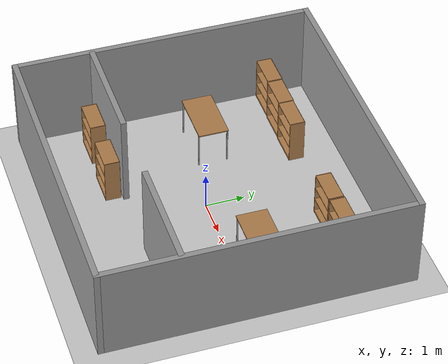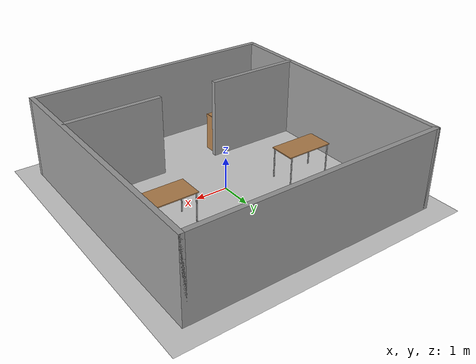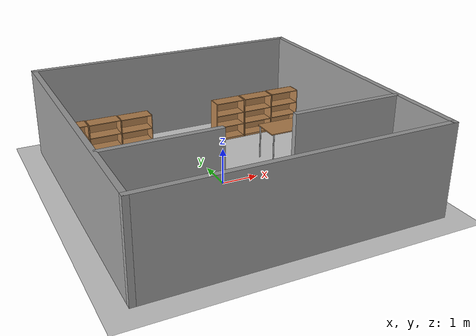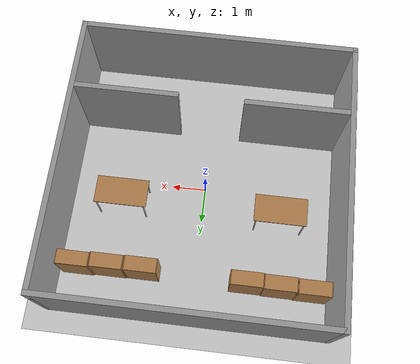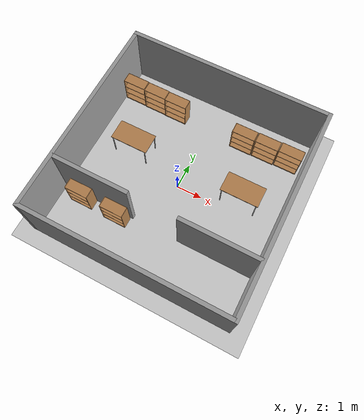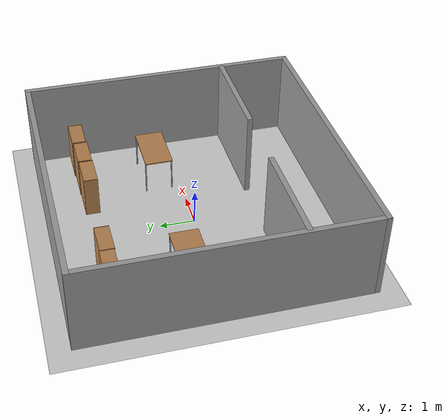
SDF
<sdf version="1.6">
 <world name="default">
  <light name="sun" type="directional">
   <pose>0 0 10 0 -0 0</pose>
   <diffuse>0.8 0.8 0.8 1</diffuse>
   <specular>0.2 0.2 0.2 1</specular>
   <attenuation>
    <range>1000</range>
    <constant>0.9</constant>
    <linear>0.01</linear>
    <quadratic>0.001</quadratic>
   </attenuation>
   <direction>-0.5 0.1 -0.9</direction>
  </light>
  <model name="ground_plane">
   <static>1</static>
   <link name="link">
    <collision name="collision">
     <geometry><plane><normal>0 0 1</normal><size>100 100</size></plane></geometry>
     <surface>
      <contact><collide_bitmask>65535</collide_bitmask></contact>
      <friction><ode><mu>100</mu><mu2>50</mu2></ode></friction>
     </surface>
    </collision>
    <visual name="visual">
     <cast_shadows>0</cast_shadows>
     <geometry><plane><normal>0 0 1</normal><size>100 100</size></plane></geometry>
     <material>
      <script><uri>file://media/materials/scripts/gazebo.material</uri><name>Gazebo/Grey</name></script>
     </material>
    </visual>
   </link>
  </model>
  <gravity>0 0 -9.8</gravity>
  <magnetic_field>6e-06 2.3e-05 -4.2e-05</magnetic_field>
  <atmosphere type="adiabatic"/>
  <physics name="default_physics" default="0" type="ode">
   <max_step_size>0.001</max_step_size>
   <real_time_factor>1</real_time_factor>
   <real_time_update_rate>1000</real_time_update_rate>
  </physics>
  <scene><ambient>0.4 0.4 0.4 1</ambient><background>0.7 0.7 0.7 1</background><shadows>1</shadows></scene>
  <spherical_coordinates>
   <surface_model>EARTH_WGS84</surface_model>
   <latitude_deg>0</latitude_deg>
   <longitude_deg>0</longitude_deg>
   <elevation>0</elevation>
   <heading_deg>0</heading_deg>
  </spherical_coordinates>
  <model name="simple_room">
   <pose>0.062678 0.074372 0 0 -0 0</pose>
   <link name="Wall_1">
    <collision name="Wall_1_Collision">
     <geometry><box><size>8 0.15 2.5</size></box></geometry>
     <pose>0 0 1.25 0 -0 0</pose>
    </collision>
    <visual name="Wall_1_Visual">
     <pose>0 0 1.25 0 -0 0</pose>
     <geometry><box><size>8 0.15 2.5</size></box></geometry>
     <material>
      <script><uri>file://media/materials/scripts/gazebo.material</uri><name>Gazebo/Grey</name></script>
      <ambient>1 1 1 1</ambient>
     </material>
     <meta><layer>0</layer></meta>
    </visual>
    <pose>-3.925 0 0 0 -0 1.5708</pose>
   </link>
   <link name="Wall_11">
    <collision name="Wall_11_Collision">
     <geometry><box><size>3 0.15 2.5</size></box></geometry>
     <pose>0 0 1.25 0 -0 0</pose>
    </collision>
    <visual name="Wall_11_Visual">
     <pose>0 0 1.25 0 -0 0</pose>
     <geometry><box><size>3 0.15 2.5</size></box></geometry>
     <material>
      <script><uri>file://media/materials/scripts/gazebo.material</uri><name>Gazebo/Grey</name></script>
      <ambient>1 1 1 1</ambient>
     </material>
     <meta><layer>0</layer></meta>
    </visual>
    <pose>2.41267 -1.91603 0 0 -0 3.14159</pose>
   </link>
   <link name="Wall_2">
    <collision name="Wall_2_Collision">
     <geometry><box><size>8 0.15 2.5</size></box></geometry>
     <pose>0 0 1.25 0 -0 0</pose>
    </collision>
    <visual name="Wall_2_Visual">
     <pose>0 0 1.25 0 -0 0</pose>
     <geometry><box><size>8 0.15 2.5</size></box></geometry>
     <material>
      <script><uri>file://media/materials/scripts/gazebo.material</uri><name>Gazebo/Grey</name></script>
      <ambient>1 1 1 1</ambient>
     </material>
     <meta><layer>0</layer></meta>
    </visual>
    <pose>-0 3.925 0 0 -0 0</pose>
   </link>
   <link name="Wall_3">
    <collision name="Wall_3_Collision">
     <geometry><box><size>8 0.15 2.5</size></box></geometry>
     <pose>0 0 1.25 0 -0 0</pose>
    </collision>
    <visual name="Wall_3_Visual">
     <pose>0 0 1.25 0 -0 0</pose>
     <geometry><box><size>8 0.15 2.5</size></box></geometry>
     <material>
      <script><uri>file://media/materials/scripts/gazebo.material</uri><name>Gazebo/Grey</name></script>
      <ambient>1 1 1 1</ambient>
     </material>
     <meta><layer>0</layer></meta>
    </visual>
    <pose>3.925 0 0 0 -0 -1.5708</pose>
   </link>
   <link name="Wall_4">
    <collision name="Wall_4_Collision">
     <geometry><box><size>8 0.15 2.5</size></box></geometry>
     <pose>0 0 1.25 0 -0 0</pose>
    </collision>
    <visual name="Wall_4_Visual">
     <pose>0 0 1.25 0 -0 0</pose>
     <geometry><box><size>8 0.15 2.5</size></box></geometry>
     <material>
      <script><uri>file://media/materials/scripts/gazebo.material</uri><name>Gazebo/Grey</name></script>
      <ambient>1 1 1 1</ambient>
     </material>
     <meta><layer>0</layer></meta>
    </visual>
    <pose>-0 -3.925 0 0 -0 3.14159</pose>
   </link>
   <link name="Wall_9">
    <collision name="Wall_9_Collision">
     <geometry><box><size>3 0.15 2.5</size></box></geometry>
     <pose>0 0 1.25 0 -0 0</pose>
    </collision>
    <visual name="Wall_9_Visual">
     <pose>0 0 1.25 0 -0 0</pose>
     <geometry><box><size>3 0.15 2.5</size></box></geometry>
     <material>
      <script><uri>file://media/materials/scripts/gazebo.material</uri><name>Gazebo/Grey</name></script>
      <ambient>1 1 1 1</ambient>
     </material>
     <meta><layer>0</layer></meta>
    </visual>
    <pose>-2.42072 -1.91603 0 0 -0 0</pose>
   </link>
   <static>1</static>
  </model>
  <model name="bookshelf">
   <static>1</static>
   <link name="link">
    <inertial><mass>1</mass></inertial>
    <collision name="back">
     <pose>0 0.005 0.6 0 -0 0</pose>
     <geometry><box><size>0.9 0.01 1.2</size></box></geometry>
    </collision>
    <visual name="visual1">
     <pose>0 0.005 0.6 0 -0 0</pose>
     <geometry><box><size>0.9 0.01 1.2</size></box></geometry>
     <material>
      <script><uri>file://media/materials/scripts/gazebo.material</uri><name>Gazebo/Wood</name></script>
     </material>
    </visual>
    <collision name="left_side">
     <pose>0.45 -0.195 0.6 0 -0 0</pose>
     <geometry><box><size>0.02 0.4 1.2</size></box></geometry>
    </collision>
    <visual name="visual2">
     <pose>0.45 -0.195 0.6 0 -0 0</pose>
     <geometry><box><size>0.02 0.4 1.2</size></box></geometry>
     <material>
      <script><uri>file://media/materials/scripts/gazebo.material</uri><name>Gazebo/Wood</name></script>
     </material>
    </visual>
    <collision name="right_side">
     <pose>-0.45 -0.195 0.6 0 -0 0</pose>
     <geometry><box><size>0.02 0.4 1.2</size></box></geometry>
    </collision>
    <visual name="visual3">
     <pose>-0.45 -0.195 0.6 0 -0 0</pose>
     <geometry><box><size>0.02 0.4 1.2</size></box></geometry>
     <material>
      <script><uri>file://media/materials/scripts/gazebo.material</uri><name>Gazebo/Wood</name></script>
     </material>
    </visual>
    <collision name="bottom">
     <pose>0 -0.195 0.03 0 -0 0</pose>
     <geometry><box><size>0.88 0.4 0.06</size></box></geometry>
    </collision>
    <visual name="visual4">
     <pose>0 -0.195 0.03 0 -0 0</pose>
     <geometry><box><size>0.88 0.4 0.06</size></box></geometry>
     <material>
      <script><uri>file://media/materials/scripts/gazebo.material</uri><name>Gazebo/Wood</name></script>
     </material>
    </visual>
    <collision name="top">
     <pose>0 -0.195 1.19 0 -0 0</pose>
     <geometry><box><size>0.88 0.4 0.02</size></box></geometry>
    </collision>
    <visual name="visual5">
     <pose>0 -0.195 1.19 0 -0 0</pose>
     <geometry><box><size>0.88 0.4 0.02</size></box></geometry>
     <material>
      <script><uri>file://media/materials/scripts/gazebo.material</uri><name>Gazebo/Wood</name></script>
     </material>
    </visual>
    <collision name="low_shelf">
     <pose>0 -0.195 0.43 0 -0 0</pose>
     <geometry><box><size>0.88 0.4 0.02</size></box></geometry>
    </collision>
    <visual name="visual6">
     <pose>0 -0.195 0.43 0 -0 0</pose>
     <geometry><box><size>0.88 0.4 0.02</size></box></geometry>
     <material>
      <script><uri>file://media/materials/scripts/gazebo.material</uri><name>Gazebo/Wood</name></script>
     </material>
    </visual>
    <collision name="high_shelf">
     <pose>0 -0.195 0.8 0 -0 0</pose>
     <geometry><box><size>0.88 0.4 0.02</size></box></geometry>
    </collision>
    <visual name="visual7">
     <pose>0 -0.195 0.8 0 -0 0</pose>
     <geometry><box><size>0.88 0.4 0.02</size></box></geometry>
     <material>
      <script><uri>file://media/materials/scripts/gazebo.material</uri><name>Gazebo/Wood</name></script>
     </material>
    </visual>
   </link>
   <pose>-1.4151 -1.96518 0 0 -0 0</pose>
  </model>
  <model name="bookshelf_0">
   <static>1</static>
   <link name="link">
    <inertial><mass>1</mass></inertial>
    <collision name="back">
     <pose>0 0.005 0.6 0 -0 0</pose>
     <geometry><box><size>0.9 0.01 1.2</size></box></geometry>
    </collision>
    <visual name="visual1">
     <pose>0 0.005 0.6 0 -0 0</pose>
     <geometry><box><size>0.9 0.01 1.2</size></box></geometry>
     <material>
      <script><uri>file://media/materials/scripts/gazebo.material</uri><name>Gazebo/Wood</name></script>
     </material>
    </visual>
    <collision name="left_side">
     <pose>0.45 -0.195 0.6 0 -0 0</pose>
     <geometry><box><size>0.02 0.4 1.2</size></box></geometry>
    </collision>
    <visual name="visual2">
     <pose>0.45 -0.195 0.6 0 -0 0</pose>
     <geometry><box><size>0.02 0.4 1.2</size></box></geometry>
     <material>
      <script><uri>file://media/materials/scripts/gazebo.material</uri><name>Gazebo/Wood</name></script>
     </material>
    </visual>
    <collision name="right_side">
     <pose>-0.45 -0.195 0.6 0 -0 0</pose>
     <geometry><box><size>0.02 0.4 1.2</size></box></geometry>
    </collision>
    <visual name="visual3">
     <pose>-0.45 -0.195 0.6 0 -0 0</pose>
     <geometry><box><size>0.02 0.4 1.2</size></box></geometry>
     <material>
      <script><uri>file://media/materials/scripts/gazebo.material</uri><name>Gazebo/Wood</name></script>
     </material>
    </visual>
    <collision name="bottom">
     <pose>0 -0.195 0.03 0 -0 0</pose>
     <geometry><box><size>0.88 0.4 0.06</size></box></geometry>
    </collision>
    <visual name="visual4">
     <pose>0 -0.195 0.03 0 -0 0</pose>
     <geometry><box><size>0.88 0.4 0.06</size></box></geometry>
     <material>
      <script><uri>file://media/materials/scripts/gazebo.material</uri><name>Gazebo/Wood</name></script>
     </material>
    </visual>
    <collision name="top">
     <pose>0 -0.195 1.19 0 -0 0</pose>
     <geometry><box><size>0.88 0.4 0.02</size></box></geometry>
    </collision>
    <visual name="visual5">
     <pose>0 -0.195 1.19 0 -0 0</pose>
     <geometry><box><size>0.88 0.4 0.02</size></box></geometry>
     <material>
      <script><uri>file://media/materials/scripts/gazebo.material</uri><name>Gazebo/Wood</name></script>
     </material>
    </visual>
    <collision name="low_shelf">
     <pose>0 -0.195 0.43 0 -0 0</pose>
     <geometry><box><size>0.88 0.4 0.02</size></box></geometry>
    </collision>
    <visual name="visual6">
     <pose>0 -0.195 0.43 0 -0 0</pose>
     <geometry><box><size>0.88 0.4 0.02</size></box></geometry>
     <material>
      <script><uri>file://media/materials/scripts/gazebo.material</uri><name>Gazebo/Wood</name></script>
     </material>
    </visual>
    <collision name="high_shelf">
     <pose>0 -0.195 0.8 0 -0 0</pose>
     <geometry><box><size>0.88 0.4 0.02</size></box></geometry>
    </collision>
    <visual name="visual7">
     <pose>0 -0.195 0.8 0 -0 0</pose>
     <geometry><box><size>0.88 0.4 0.02</size></box></geometry>
     <material>
      <script><uri>file://media/materials/scripts/gazebo.material</uri><name>Gazebo/Wood</name></script>
     </material>
    </visual>
   </link>
   <pose>-2.87956 -1.92849 0 0 -0 0</pose>
  </model>
  <model name="bookshelf_1">
   <static>1</static>
   <link name="link">
    <inertial><mass>1</mass></inertial>
    <collision name="back">
     <pose>0 0.005 0.6 0 -0 0</pose>
     <geometry><box><size>0.9 0.01 1.2</size></box></geometry>
    </collision>
    <visual name="visual1">
     <pose>0 0.005 0.6 0 -0 0</pose>
     <geometry><box><size>0.9 0.01 1.2</size></box></geometry>
     <material>
      <script><uri>file://media/materials/scripts/gazebo.material</uri><name>Gazebo/Wood</name></script>
     </material>
    </visual>
    <collision name="left_side">
     <pose>0.45 -0.195 0.6 0 -0 0</pose>
     <geometry><box><size>0.02 0.4 1.2</size></box></geometry>
    </collision>
    <visual name="visual2">
     <pose>0.45 -0.195 0.6 0 -0 0</pose>
     <geometry><box><size>0.02 0.4 1.2</size></box></geometry>
     <material>
      <script><uri>file://media/materials/scripts/gazebo.material</uri><name>Gazebo/Wood</name></script>
     </material>
    </visual>
    <collision name="right_side">
     <pose>-0.45 -0.195 0.6 0 -0 0</pose>
     <geometry><box><size>0.02 0.4 1.2</size></box></geometry>
    </collision>
    <visual name="visual3">
     <pose>-0.45 -0.195 0.6 0 -0 0</pose>
     <geometry><box><size>0.02 0.4 1.2</size></box></geometry>
     <material>
      <script><uri>file://media/materials/scripts/gazebo.material</uri><name>Gazebo/Wood</name></script>
     </material>
    </visual>
    <collision name="bottom">
     <pose>0 -0.195 0.03 0 -0 0</pose>
     <geometry><box><size>0.88 0.4 0.06</size></box></geometry>
    </collision>
    <visual name="visual4">
     <pose>0 -0.195 0.03 0 -0 0</pose>
     <geometry><box><size>0.88 0.4 0.06</size></box></geometry>
     <material>
      <script><uri>file://media/materials/scripts/gazebo.material</uri><name>Gazebo/Wood</name></script>
     </material>
    </visual>
    <collision name="top">
     <pose>0 -0.195 1.19 0 -0 0</pose>
     <geometry><box><size>0.88 0.4 0.02</size></box></geometry>
    </collision>
    <visual name="visual5">
     <pose>0 -0.195 1.19 0 -0 0</pose>
     <geometry><box><size>0.88 0.4 0.02</size></box></geometry>
     <material>
      <script><uri>file://media/materials/scripts/gazebo.material</uri><name>Gazebo/Wood</name></script>
     </material>
    </visual>
    <collision name="low_shelf">
     <pose>0 -0.195 0.43 0 -0 0</pose>
     <geometry><box><size>0.88 0.4 0.02</size></box></geometry>
    </collision>
    <visual name="visual6">
     <pose>0 -0.195 0.43 0 -0 0</pose>
     <geometry><box><size>0.88 0.4 0.02</size></box></geometry>
     <material>
      <script><uri>file://media/materials/scripts/gazebo.material</uri><name>Gazebo/Wood</name></script>
     </material>
    </visual>
    <collision name="high_shelf">
     <pose>0 -0.195 0.8 0 -0 0</pose>
     <geometry><box><size>0.88 0.4 0.02</size></box></geometry>
    </collision>
    <visual name="visual7">
     <pose>0 -0.195 0.8 0 -0 0</pose>
     <geometry><box><size>0.88 0.4 0.02</size></box></geometry>
     <material>
      <script><uri>file://media/materials/scripts/gazebo.material</uri><name>Gazebo/Wood</name></script>
     </material>
    </visual>
   </link>
   <pose>-3.29414 3.00127 0 0 -0 0</pose>
  </model>
  <model name="bookshelf_1_clone">
   <static>1</static>
   <link name="link">
    <inertial><mass>1</mass></inertial>
    <collision name="back">
     <pose>0 0.005 0.6 0 -0 0</pose>
     <geometry><box><size>0.9 0.01 1.2</size></box></geometry>
    </collision>
    <visual name="visual1">
     <pose>0 0.005 0.6 0 -0 0</pose>
     <geometry><box><size>0.9 0.01 1.2</size></box></geometry>
     <material>
      <script><uri>file://media/materials/scripts/gazebo.material</uri><name>Gazebo/Wood</name></script>
     </material>
    </visual>
    <collision name="left_side">
     <pose>0.45 -0.195 0.6 0 -0 0</pose>
     <geometry><box><size>0.02 0.4 1.2</size></box></geometry>
    </collision>
    <visual name="visual2">
     <pose>0.45 -0.195 0.6 0 -0 0</pose>
     <geometry><box><size>0.02 0.4 1.2</size></box></geometry>
     <material>
      <script><uri>file://media/materials/scripts/gazebo.material</uri><name>Gazebo/Wood</name></script>
     </material>
    </visual>
    <collision name="right_side">
     <pose>-0.45 -0.195 0.6 0 -0 0</pose>
     <geometry><box><size>0.02 0.4 1.2</size></box></geometry>
    </collision>
    <visual name="visual3">
     <pose>-0.45 -0.195 0.6 0 -0 0</pose>
     <geometry><box><size>0.02 0.4 1.2</size></box></geometry>
     <material>
      <script><uri>file://media/materials/scripts/gazebo.material</uri><name>Gazebo/Wood</name></script>
     </material>
    </visual>
    <collision name="bottom">
     <pose>0 -0.195 0.03 0 -0 0</pose>
     <geometry><box><size>0.88 0.4 0.06</size></box></geometry>
    </collision>
    <visual name="visual4">
     <pose>0 -0.195 0.03 0 -0 0</pose>
     <geometry><box><size>0.88 0.4 0.06</size></box></geometry>
     <material>
      <script><uri>file://media/materials/scripts/gazebo.material</uri><name>Gazebo/Wood</name></script>
     </material>
    </visual>
    <collision name="top">
     <pose>0 -0.195 1.19 0 -0 0</pose>
     <geometry><box><size>0.88 0.4 0.02</size></box></geometry>
    </collision>
    <visual name="visual5">
     <pose>0 -0.195 1.19 0 -0 0</pose>
     <geometry><box><size>0.88 0.4 0.02</size></box></geometry>
     <material>
      <script><uri>file://media/materials/scripts/gazebo.material</uri><name>Gazebo/Wood</name></script>
     </material>
    </visual>
    <collision name="low_shelf">
     <pose>0 -0.195 0.43 0 -0 0</pose>
     <geometry><box><size>0.88 0.4 0.02</size></box></geometry>
    </collision>
    <visual name="visual6">
     <pose>0 -0.195 0.43 0 -0 0</pose>
     <geometry><box><size>0.88 0.4 0.02</size></box></geometry>
     <material>
      <script><uri>file://media/materials/scripts/gazebo.material</uri><name>Gazebo/Wood</name></script>
     </material>
    </visual>
    <collision name="high_shelf">
     <pose>0 -0.195 0.8 0 -0 0</pose>
     <geometry><box><size>0.88 0.4 0.02</size></box></geometry>
    </collision>
    <visual name="visual7">
     <pose>0 -0.195 0.8 0 -0 0</pose>
     <geometry><box><size>0.88 0.4 0.02</size></box></geometry>
     <material>
      <script><uri>file://media/materials/scripts/gazebo.material</uri><name>Gazebo/Wood</name></script>
     </material>
    </visual>
   </link>
   <pose>-2.36883 2.98414 0 0 -0 0</pose>
  </model>
  <model name="bookshelf_1_clone_0">
   <static>1</static>
   <link name="link">
    <inertial><mass>1</mass></inertial>
    <collision name="back">
     <pose>0 0.005 0.6 0 -0 0</pose>
     <geometry><box><size>0.9 0.01 1.2</size></box></geometry>
    </collision>
    <visual name="visual1">
     <pose>0 0.005 0.6 0 -0 0</pose>
     <geometry><box><size>0.9 0.01 1.2</size></box></geometry>
     <material>
      <script><uri>file://media/materials/scripts/gazebo.material</uri><name>Gazebo/Wood</name></script>
     </material>
    </visual>
    <collision name="left_side">
     <pose>0.45 -0.195 0.6 0 -0 0</pose>
     <geometry><box><size>0.02 0.4 1.2</size></box></geometry>
    </collision>
    <visual name="visual2">
     <pose>0.45 -0.195 0.6 0 -0 0</pose>
     <geometry><box><size>0.02 0.4 1.2</size></box></geometry>
     <material>
      <script><uri>file://media/materials/scripts/gazebo.material</uri><name>Gazebo/Wood</name></script>
     </material>
    </visual>
    <collision name="right_side">
     <pose>-0.45 -0.195 0.6 0 -0 0</pose>
     <geometry><box><size>0.02 0.4 1.2</size></box></geometry>
    </collision>
    <visual name="visual3">
     <pose>-0.45 -0.195 0.6 0 -0 0</pose>
     <geometry><box><size>0.02 0.4 1.2</size></box></geometry>
     <material>
      <script><uri>file://media/materials/scripts/gazebo.material</uri><name>Gazebo/Wood</name></script>
     </material>
    </visual>
    <collision name="bottom">
     <pose>0 -0.195 0.03 0 -0 0</pose>
     <geometry><box><size>0.88 0.4 0.06</size></box></geometry>
    </collision>
    <visual name="visual4">
     <pose>0 -0.195 0.03 0 -0 0</pose>
     <geometry><box><size>0.88 0.4 0.06</size></box></geometry>
     <material>
      <script><uri>file://media/materials/scripts/gazebo.material</uri><name>Gazebo/Wood</name></script>
     </material>
    </visual>
    <collision name="top">
     <pose>0 -0.195 1.19 0 -0 0</pose>
     <geometry><box><size>0.88 0.4 0.02</size></box></geometry>
    </collision>
    <visual name="visual5">
     <pose>0 -0.195 1.19 0 -0 0</pose>
     <geometry><box><size>0.88 0.4 0.02</size></box></geometry>
     <material>
      <script><uri>file://media/materials/scripts/gazebo.material</uri><name>Gazebo/Wood</name></script>
     </material>
    </visual>
    <collision name="low_shelf">
     <pose>0 -0.195 0.43 0 -0 0</pose>
     <geometry><box><size>0.88 0.4 0.02</size></box></geometry>
    </collision>
    <visual name="visual6">
     <pose>0 -0.195 0.43 0 -0 0</pose>
     <geometry><box><size>0.88 0.4 0.02</size></box></geometry>
     <material>
      <script><uri>file://media/materials/scripts/gazebo.material</uri><name>Gazebo/Wood</name></script>
     </material>
    </visual>
    <collision name="high_shelf">
     <pose>0 -0.195 0.8 0 -0 0</pose>
     <geometry><box><size>0.88 0.4 0.02</size></box></geometry>
    </collision>
    <visual name="visual7">
     <pose>0 -0.195 0.8 0 -0 0</pose>
     <geometry><box><size>0.88 0.4 0.02</size></box></geometry>
     <material>
      <script><uri>file://media/materials/scripts/gazebo.material</uri><name>Gazebo/Wood</name></script>
     </material>
    </visual>
   </link>
   <pose>-1.45467 2.96723 0 0 -0 0</pose>
  </model>
  <model name="bookshelf_1_clone_1">
   <static>1</static>
   <link name="link">
    <inertial><mass>1</mass></inertial>
    <collision name="back">
     <pose>0 0.005 0.6 0 -0 0</pose>
     <geometry><box><size>0.9 0.01 1.2</size></box></geometry>
    </collision>
    <visual name="visual1">
     <pose>0 0.005 0.6 0 -0 0</pose>
     <geometry><box><size>0.9 0.01 1.2</size></box></geometry>
     <material>
      <script><uri>file://media/materials/scripts/gazebo.material</uri><name>Gazebo/Wood</name></script>
     </material>
    </visual>
    <collision name="left_side">
     <pose>0.45 -0.195 0.6 0 -0 0</pose>
     <geometry><box><size>0.02 0.4 1.2</size></box></geometry>
    </collision>
    <visual name="visual2">
     <pose>0.45 -0.195 0.6 0 -0 0</pose>
     <geometry><box><size>0.02 0.4 1.2</size></box></geometry>
     <material>
      <script><uri>file://media/materials/scripts/gazebo.material</uri><name>Gazebo/Wood</name></script>
     </material>
    </visual>
    <collision name="right_side">
     <pose>-0.45 -0.195 0.6 0 -0 0</pose>
     <geometry><box><size>0.02 0.4 1.2</size></box></geometry>
    </collision>
    <visual name="visual3">
     <pose>-0.45 -0.195 0.6 0 -0 0</pose>
     <geometry><box><size>0.02 0.4 1.2</size></box></geometry>
     <material>
      <script><uri>file://media/materials/scripts/gazebo.material</uri><name>Gazebo/Wood</name></script>
     </material>
    </visual>
    <collision name="bottom">
     <pose>0 -0.195 0.03 0 -0 0</pose>
     <geometry><box><size>0.88 0.4 0.06</size></box></geometry>
    </collision>
    <visual name="visual4">
     <pose>0 -0.195 0.03 0 -0 0</pose>
     <geometry><box><size>0.88 0.4 0.06</size></box></geometry>
     <material>
      <script><uri>file://media/materials/scripts/gazebo.material</uri><name>Gazebo/Wood</name></script>
     </material>
    </visual>
    <collision name="top">
     <pose>0 -0.195 1.19 0 -0 0</pose>
     <geometry><box><size>0.88 0.4 0.02</size></box></geometry>
    </collision>
    <visual name="visual5">
     <pose>0 -0.195 1.19 0 -0 0</pose>
     <geometry><box><size>0.88 0.4 0.02</size></box></geometry>
     <material>
      <script><uri>file://media/materials/scripts/gazebo.material</uri><name>Gazebo/Wood</name></script>
     </material>
    </visual>
    <collision name="low_shelf">
     <pose>0 -0.195 0.43 0 -0 0</pose>
     <geometry><box><size>0.88 0.4 0.02</size></box></geometry>
    </collision>
    <visual name="visual6">
     <pose>0 -0.195 0.43 0 -0 0</pose>
     <geometry><box><size>0.88 0.4 0.02</size></box></geometry>
     <material>
      <script><uri>file://media/materials/scripts/gazebo.material</uri><name>Gazebo/Wood</name></script>
     </material>
    </visual>
    <collision name="high_shelf">
     <pose>0 -0.195 0.8 0 -0 0</pose>
     <geometry><box><size>0.88 0.4 0.02</size></box></geometry>
    </collision>
    <visual name="visual7">
     <pose>0 -0.195 0.8 0 -0 0</pose>
     <geometry><box><size>0.88 0.4 0.02</size></box></geometry>
     <material>
      <script><uri>file://media/materials/scripts/gazebo.material</uri><name>Gazebo/Wood</name></script>
     </material>
    </visual>
   </link>
   <pose>3.34683 2.95407 0 0 -0 0</pose>
  </model>
  <model name="bookshelf_1_clone_2">
   <static>1</static>
   <link name="link">
    <inertial><mass>1</mass></inertial>
    <collision name="back">
     <pose>0 0.005 0.6 0 -0 0</pose>
     <geometry><box><size>0.9 0.01 1.2</size></box></geometry>
    </collision>
    <visual name="visual1">
     <pose>0 0.005 0.6 0 -0 0</pose>
     <geometry><box><size>0.9 0.01 1.2</size></box></geometry>
     <material>
      <script><uri>file://media/materials/scripts/gazebo.material</uri><name>Gazebo/Wood</name></script>
     </material>
    </visual>
    <collision name="left_side">
     <pose>0.45 -0.195 0.6 0 -0 0</pose>
     <geometry><box><size>0.02 0.4 1.2</size></box></geometry>
    </collision>
    <visual name="visual2">
     <pose>0.45 -0.195 0.6 0 -0 0</pose>
     <geometry><box><size>0.02 0.4 1.2</size></box></geometry>
     <material>
      <script><uri>file://media/materials/scripts/gazebo.material</uri><name>Gazebo/Wood</name></script>
     </material>
    </visual>
    <collision name="right_side">
     <pose>-0.45 -0.195 0.6 0 -0 0</pose>
     <geometry><box><size>0.02 0.4 1.2</size></box></geometry>
    </collision>
    <visual name="visual3">
     <pose>-0.45 -0.195 0.6 0 -0 0</pose>
     <geometry><box><size>0.02 0.4 1.2</size></box></geometry>
     <material>
      <script><uri>file://media/materials/scripts/gazebo.material</uri><name>Gazebo/Wood</name></script>
     </material>
    </visual>
    <collision name="bottom">
     <pose>0 -0.195 0.03 0 -0 0</pose>
     <geometry><box><size>0.88 0.4 0.06</size></box></geometry>
    </collision>
    <visual name="visual4">
     <pose>0 -0.195 0.03 0 -0 0</pose>
     <geometry><box><size>0.88 0.4 0.06</size></box></geometry>
     <material>
      <script><uri>file://media/materials/scripts/gazebo.material</uri><name>Gazebo/Wood</name></script>
     </material>
    </visual>
    <collision name="top">
     <pose>0 -0.195 1.19 0 -0 0</pose>
     <geometry><box><size>0.88 0.4 0.02</size></box></geometry>
    </collision>
    <visual name="visual5">
     <pose>0 -0.195 1.19 0 -0 0</pose>
     <geometry><box><size>0.88 0.4 0.02</size></box></geometry>
     <material>
      <script><uri>file://media/materials/scripts/gazebo.material</uri><name>Gazebo/Wood</name></script>
     </material>
    </visual>
    <collision name="low_shelf">
     <pose>0 -0.195 0.43 0 -0 0</pose>
     <geometry><box><size>0.88 0.4 0.02</size></box></geometry>
    </collision>
    <visual name="visual6">
     <pose>0 -0.195 0.43 0 -0 0</pose>
     <geometry><box><size>0.88 0.4 0.02</size></box></geometry>
     <material>
      <script><uri>file://media/materials/scripts/gazebo.material</uri><name>Gazebo/Wood</name></script>
     </material>
    </visual>
    <collision name="high_shelf">
     <pose>0 -0.195 0.8 0 -0 0</pose>
     <geometry><box><size>0.88 0.4 0.02</size></box></geometry>
    </collision>
    <visual name="visual7">
     <pose>0 -0.195 0.8 0 -0 0</pose>
     <geometry><box><size>0.88 0.4 0.02</size></box></geometry>
     <material>
      <script><uri>file://media/materials/scripts/gazebo.material</uri><name>Gazebo/Wood</name></script>
     </material>
    </visual>
   </link>
   <pose>2.41147 2.92685 0 0 -0 0</pose>
  </model>
  <model name="bookshelf_1_clone_3">
   <static>1</static>
   <link name="link">
    <inertial><mass>1</mass></inertial>
    <collision name="back">
     <pose>0 0.005 0.6 0 -0 0</pose>
     <geometry><box><size>0.9 0.01 1.2</size></box></geometry>
    </collision>
    <visual name="visual1">
     <pose>0 0.005 0.6 0 -0 0</pose>
     <geometry><box><size>0.9 0.01 1.2</size></box></geometry>
     <material>
      <script><uri>file://media/materials/scripts/gazebo.material</uri><name>Gazebo/Wood</name></script>
     </material>
    </visual>
    <collision name="left_side">
     <pose>0.45 -0.195 0.6 0 -0 0</pose>
     <geometry><box><size>0.02 0.4 1.2</size></box></geometry>
    </collision>
    <visual name="visual2">
     <pose>0.45 -0.195 0.6 0 -0 0</pose>
     <geometry><box><size>0.02 0.4 1.2</size></box></geometry>
     <material>
      <script><uri>file://media/materials/scripts/gazebo.material</uri><name>Gazebo/Wood</name></script>
     </material>
    </visual>
    <collision name="right_side">
     <pose>-0.45 -0.195 0.6 0 -0 0</pose>
     <geometry><box><size>0.02 0.4 1.2</size></box></geometry>
    </collision>
    <visual name="visual3">
     <pose>-0.45 -0.195 0.6 0 -0 0</pose>
     <geometry><box><size>0.02 0.4 1.2</size></box></geometry>
     <material>
      <script><uri>file://media/materials/scripts/gazebo.material</uri><name>Gazebo/Wood</name></script>
     </material>
    </visual>
    <collision name="bottom">
     <pose>0 -0.195 0.03 0 -0 0</pose>
     <geometry><box><size>0.88 0.4 0.06</size></box></geometry>
    </collision>
    <visual name="visual4">
     <pose>0 -0.195 0.03 0 -0 0</pose>
     <geometry><box><size>0.88 0.4 0.06</size></box></geometry>
     <material>
      <script><uri>file://media/materials/scripts/gazebo.material</uri><name>Gazebo/Wood</name></script>
     </material>
    </visual>
    <collision name="top">
     <pose>0 -0.195 1.19 0 -0 0</pose>
     <geometry><box><size>0.88 0.4 0.02</size></box></geometry>
    </collision>
    <visual name="visual5">
     <pose>0 -0.195 1.19 0 -0 0</pose>
     <geometry><box><size>0.88 0.4 0.02</size></box></geometry>
     <material>
      <script><uri>file://media/materials/scripts/gazebo.material</uri><name>Gazebo/Wood</name></script>
     </material>
    </visual>
    <collision name="low_shelf">
     <pose>0 -0.195 0.43 0 -0 0</pose>
     <geometry><box><size>0.88 0.4 0.02</size></box></geometry>
    </collision>
    <visual name="visual6">
     <pose>0 -0.195 0.43 0 -0 0</pose>
     <geometry><box><size>0.88 0.4 0.02</size></box></geometry>
     <material>
      <script><uri>file://media/materials/scripts/gazebo.material</uri><name>Gazebo/Wood</name></script>
     </material>
    </visual>
    <collision name="high_shelf">
     <pose>0 -0.195 0.8 0 -0 0</pose>
     <geometry><box><size>0.88 0.4 0.02</size></box></geometry>
    </collision>
    <visual name="visual7">
     <pose>0 -0.195 0.8 0 -0 0</pose>
     <geometry><box><size>0.88 0.4 0.02</size></box></geometry>
     <material>
      <script><uri>file://media/materials/scripts/gazebo.material</uri><name>Gazebo/Wood</name></script>
     </material>
    </visual>
   </link>
   <pose>1.47006 2.91436 0 0 -0 0</pose>
  </model>
  <model name="table">
   <static>1</static>
   <link name="link">
    <collision name="surface">
     <pose>0 0 1 0 -0 0</pose>
     <geometry><box><size>1.5 0.8 0.03</size></box></geometry>
     <surface><friction><ode><mu>0.6</mu><mu2>0.6</mu2></ode></friction></surface>
    </collision>
    <visual name="visual1">
     <pose>0 0 1 0 -0 0</pose>
     <geometry><box><size>1.5 0.8 0.03</size></box></geometry>
     <material>
      <script><uri>file://media/materials/scripts/gazebo.material</uri><name>Gazebo/Wood</name></script>
     </material>
    </visual>
    <collision name="front_left_leg">
     <pose>0.68 0.38 0.5 0 -0 0</pose>
     <geometry><cylinder><radius>0.02</radius><length>1</length></cylinder></geometry>
    </collision>
    <visual name="front_left_leg">
     <pose>0.68 0.38 0.5 0 -0 0</pose>
     <geometry><cylinder><radius>0.02</radius><length>1</length></cylinder></geometry>
     <material>
      <script><uri>file://media/materials/scripts/gazebo.material</uri><name>Gazebo/Grey</name></script>
     </material>
    </visual>
    <collision name="front_right_leg">
     <pose>0.68 -0.38 0.5 0 -0 0</pose>
     <geometry><cylinder><radius>0.02</radius><length>1</length></cylinder></geometry>
    </collision>
    <visual name="front_right_leg">
     <pose>0.68 -0.38 0.5 0 -0 0</pose>
     <geometry><cylinder><radius>0.02</radius><length>1</length></cylinder></geometry>
     <material>
      <script><uri>file://media/materials/scripts/gazebo.material</uri><name>Gazebo/Grey</name></script>
     </material>
    </visual>
    <collision name="back_right_leg">
     <pose>-0.68 -0.38 0.5 0 -0 0</pose>
     <geometry><cylinder><radius>0.02</radius><length>1</length></cylinder></geometry>
    </collision>
    <visual name="back_right_leg">
     <pose>-0.68 -0.38 0.5 0 -0 0</pose>
     <geometry><cylinder><radius>0.02</radius><length>1</length></cylinder></geometry>
     <material>
      <script><uri>file://media/materials/scripts/gazebo.material</uri><name>Gazebo/Grey</name></script>
     </material>
    </visual>
    <collision name="back_left_leg">
     <pose>-0.68 0.38 0.5 0 -0 0</pose>
     <geometry><cylinder><radius>0.02</radius><length>1</length></cylinder></geometry>
    </collision>
    <visual name="back_left_leg">
     <pose>-0.68 0.38 0.5 0 -0 0</pose>
     <geometry><cylinder><radius>0.02</radius><length>1</length></cylinder></geometry>
     <material>
      <script><uri>file://media/materials/scripts/gazebo.material</uri><name>Gazebo/Grey</name></script>
     </material>
    </visual>
   </link>
   <pose>-2.23493 0.68363 0 0 -0 0</pose>
  </model>
  <model name="table_clone">
   <static>1</static>
   <link name="link">
    <collision name="surface">
     <pose>0 0 1 0 -0 0</pose>
     <geometry><box><size>1.5 0.8 0.03</size></box></geometry>
     <surface><friction><ode><mu>0.6</mu><mu2>0.6</mu2></ode></friction></surface>
    </collision>
    <visual name="visual1">
     <pose>0 0 1 0 -0 0</pose>
     <geometry><box><size>1.5 0.8 0.03</size></box></geometry>
     <material>
      <script><uri>file://media/materials/scripts/gazebo.material</uri><name>Gazebo/Wood</name></script>
     </material>
    </visual>
    <collision name="front_left_leg">
     <pose>0.68 0.38 0.5 0 -0 0</pose>
     <geometry><cylinder><radius>0.02</radius><length>1</length></cylinder></geometry>
    </collision>
    <visual name="front_left_leg">
     <pose>0.68 0.38 0.5 0 -0 0</pose>
     <geometry><cylinder><radius>0.02</radius><length>1</length></cylinder></geometry>
     <material>
      <script><uri>file://media/materials/scripts/gazebo.material</uri><name>Gazebo/Grey</name></script>
     </material>
    </visual>
    <collision name="front_right_leg">
     <pose>0.68 -0.38 0.5 0 -0 0</pose>
     <geometry><cylinder><radius>0.02</radius><length>1</length></cylinder></geometry>
    </collision>
    <visual name="front_right_leg">
     <pose>0.68 -0.38 0.5 0 -0 0</pose>
     <geometry><cylinder><radius>0.02</radius><length>1</length></cylinder></geometry>
     <material>
      <script><uri>file://media/materials/scripts/gazebo.material</uri><name>Gazebo/Grey</name></script>
     </material>
    </visual>
    <collision name="back_right_leg">
     <pose>-0.68 -0.38 0.5 0 -0 0</pose>
     <geometry><cylinder><radius>0.02</radius><length>1</length></cylinder></geometry>
    </collision>
    <visual name="back_right_leg">
     <pose>-0.68 -0.38 0.5 0 -0 0</pose>
     <geometry><cylinder><radius>0.02</radius><length>1</length></cylinder></geometry>
     <material>
      <script><uri>file://media/materials/scripts/gazebo.material</uri><name>Gazebo/Grey</name></script>
     </material>
    </visual>
    <collision name="back_left_leg">
     <pose>-0.68 0.38 0.5 0 -0 0</pose>
     <geometry><cylinder><radius>0.02</radius><length>1</length></cylinder></geometry>
    </collision>
    <visual name="back_left_leg">
     <pose>-0.68 0.38 0.5 0 -0 0</pose>
     <geometry><cylinder><radius>0.02</radius><length>1</length></cylinder></geometry>
     <material>
      <script><uri>file://media/materials/scripts/gazebo.material</uri><name>Gazebo/Grey</name></script>
     </material>
    </visual>
   </link>
   <pose>2.34916 0.647192 0 0 -0 0</pose>
  </model>
 </world>
</sdf>
